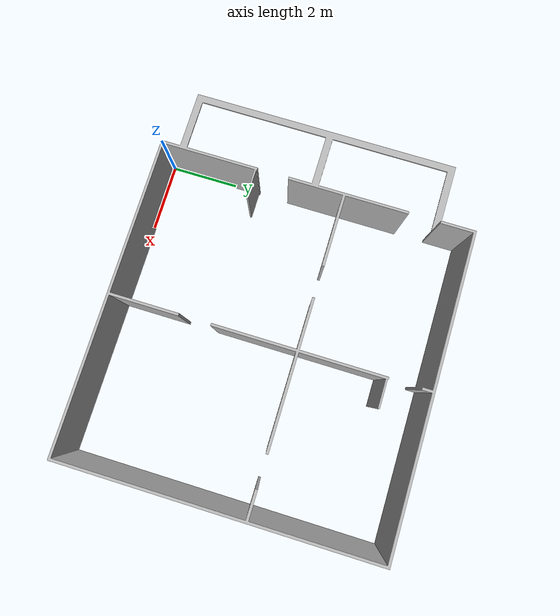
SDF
<?xml version="1.0" ?>
<sdf version="1.6">
  <model name="rwc2022/walls">
    <static>true</static>
    <link name="1_link">
      <collision name="1_col">
        <geometry>
          <mesh>
            <uri>model://rwc2022/walls/shape/heightmap.stl</uri>
          </mesh>
        </geometry>
      </collision>
      <visual name="1_vis">
        <geometry>
          <mesh>
            <uri>model://rwc2022/walls/shape/heightmap.stl</uri>
          </mesh>
        </geometry>
      </visual>
      <pose>0 0 0 0 0 0</pose>
    </link>
  </model>
</sdf>
